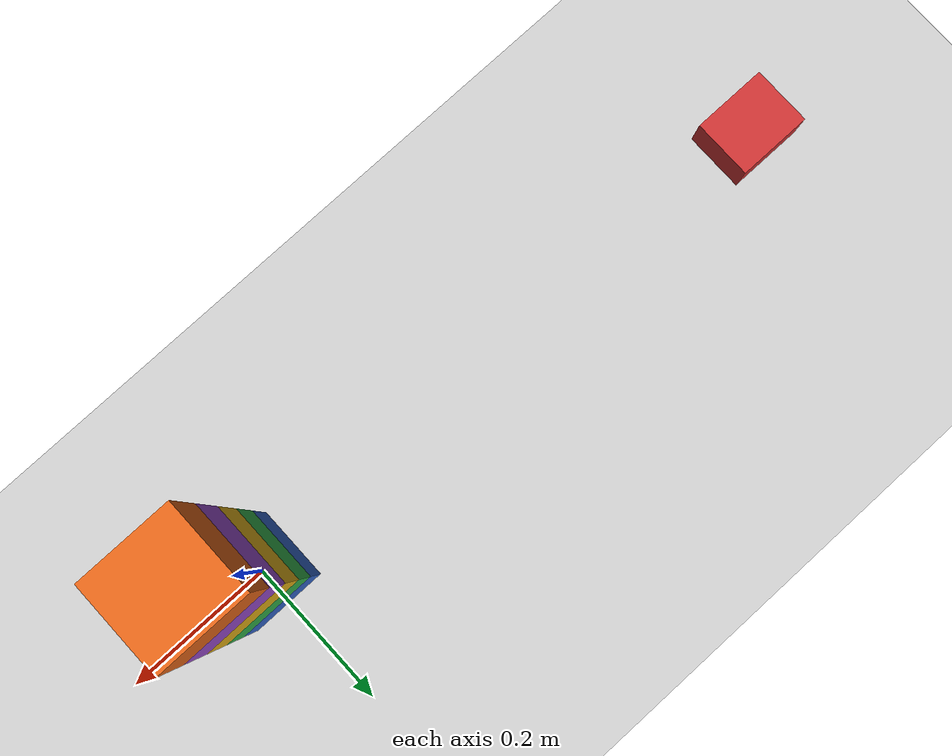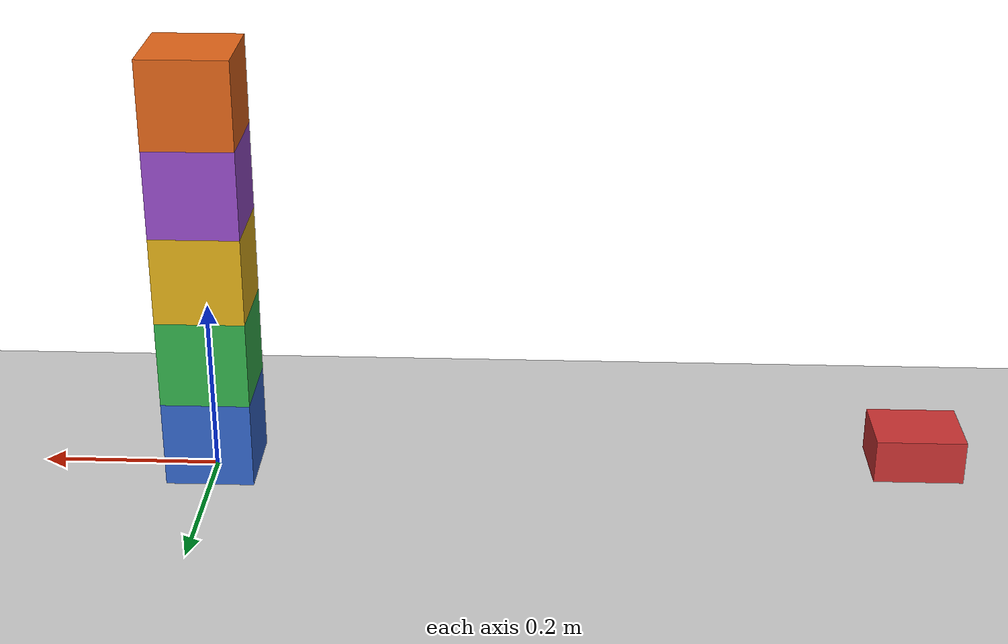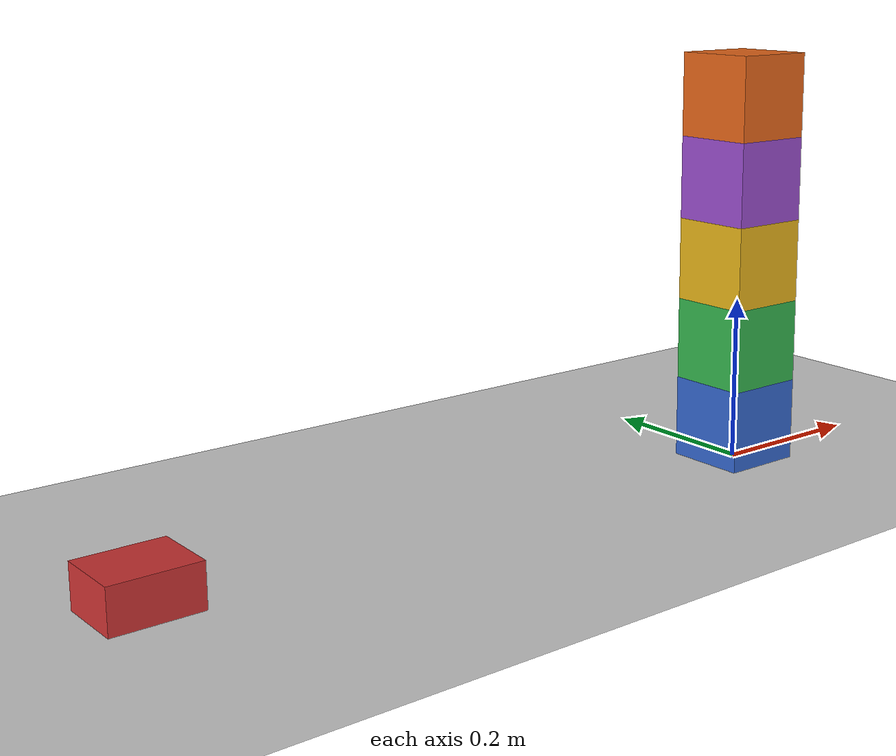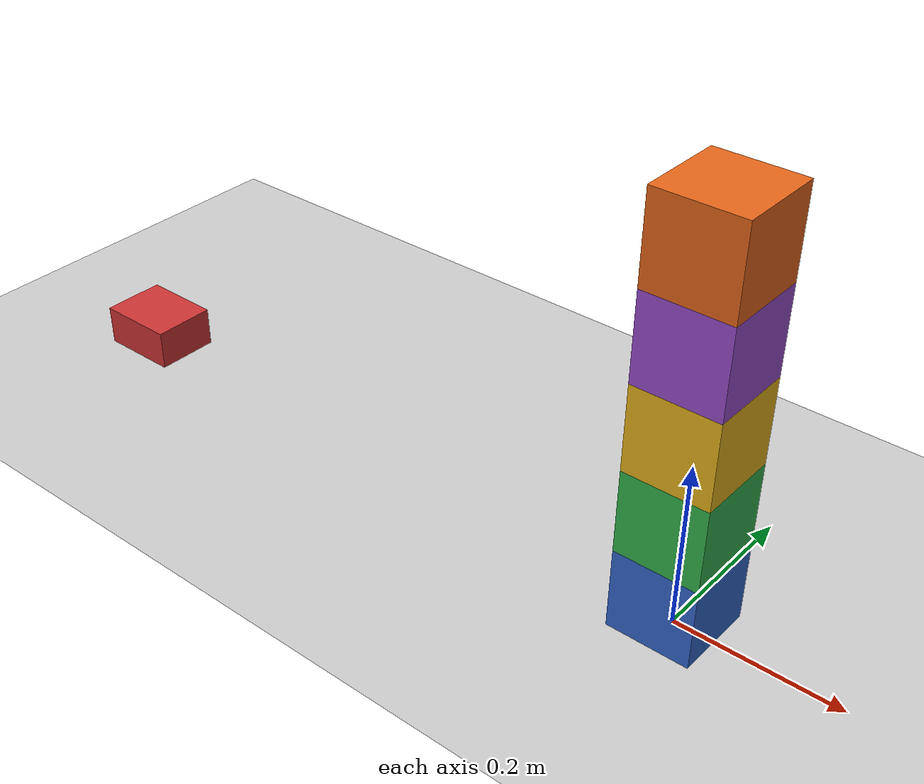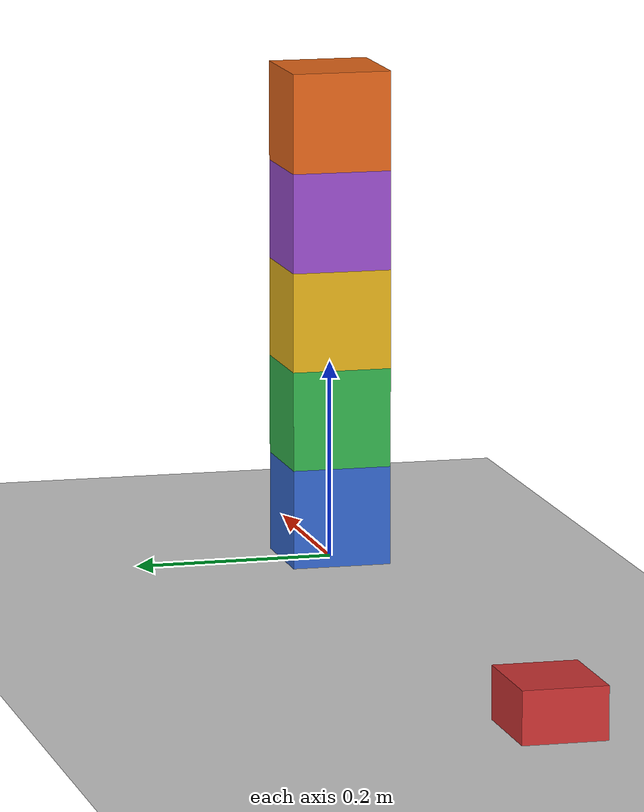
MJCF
<mujoco model="toppling_stack">
  <option timestep="0.002" gravity="0 0 -9.81"/>
  <worldbody>
    <light name="sun" pos="0 0 3" dir="0 0 -1" directional="true"/>
    <geom name="floor" type="plane" size="3 3 0.1" friction="0.5 0.005 0.0001" rgba="0.8 0.8 0.8 1"/>

    <body name="pusher" pos="-0.8 0 0.04">
      <joint name="pusher_slide" type="slide" axis="1 0 0" limited="true" range="0 1.35" damping="0" frictionloss="20"/>
      <geom name="pusher_geom" type="box" size="0.05 0.04 0.025" mass="10" friction="0.5 0.005 0.0001" rgba="0.8 0.2 0.2 1"/>
    </body>

    <body name="block1" pos="0 0 0.05">
      <freejoint name="block1_free"/>
      <geom name="block1_geom" type="box" size="0.05 0.05 0.05" density="500" friction="0.5 0.005 0.0001" rgba="0.2 0.4 0.8 1"/>
    </body>
    <body name="block2" pos="0 0 0.15">
      <freejoint name="block2_free"/>
      <geom name="block2_geom" type="box" size="0.05 0.05 0.05" density="500" friction="0.5 0.005 0.0001" rgba="0.2 0.7 0.3 1"/>
    </body>
    <body name="block3" pos="0 0 0.25">
      <freejoint name="block3_free"/>
      <geom name="block3_geom" type="box" size="0.05 0.05 0.05" density="500" friction="0.5 0.005 0.0001" rgba="0.9 0.7 0.1 1"/>
    </body>
    <body name="block4" pos="0 0 0.35">
      <freejoint name="block4_free"/>
      <geom name="block4_geom" type="box" size="0.05 0.05 0.05" density="500" friction="0.5 0.005 0.0001" rgba="0.6 0.3 0.8 1"/>
    </body>
    <body name="block5" pos="0 0 0.45">
      <freejoint name="block5_free"/>
      <geom name="block5_geom" type="box" size="0.05 0.05 0.05" density="500" friction="0.5 0.005 0.0001" rgba="0.9 0.4 0.1 1"/>
    </body>
  </worldbody>

  <keyframe>
    <key name="start" qpos="0  0 0 0.05 1 0 0 0  0 0 0.15 1 0 0 0  0 0 0.25 1 0 0 0  0 0 0.35 1 0 0 0  0 0 0.45 1 0 0 0" qvel="4  0 0 0 0 0 0  0 0 0 0 0 0  0 0 0 0 0 0  0 0 0 0 0 0  0 0 0 0 0 0"/>
  </keyframe>
</mujoco>
